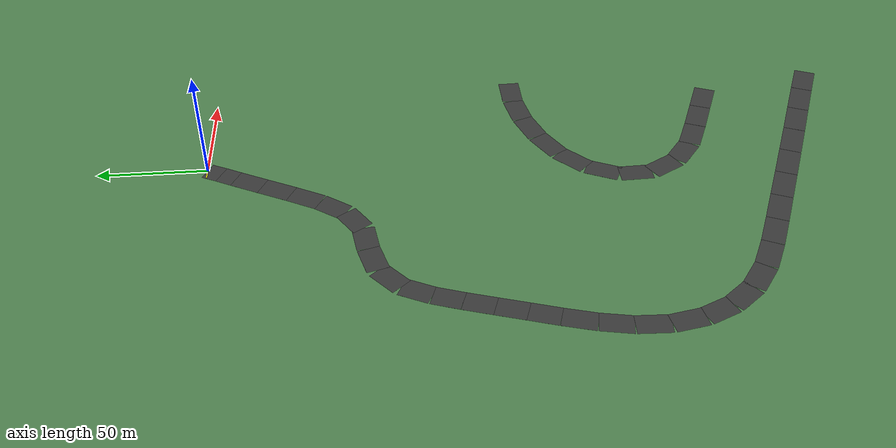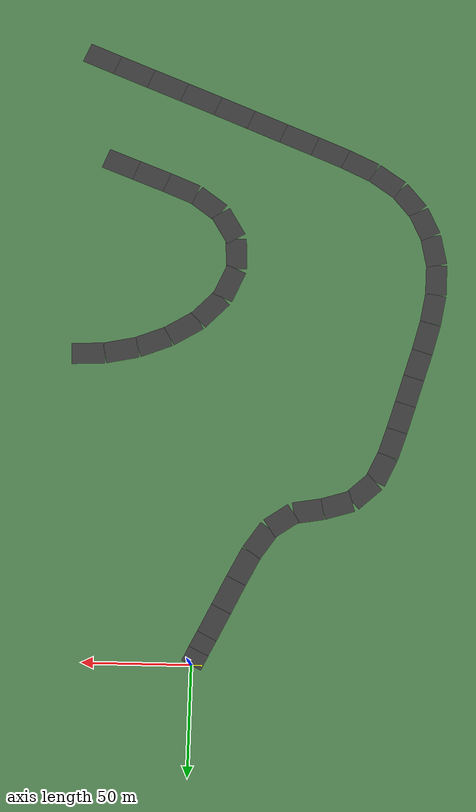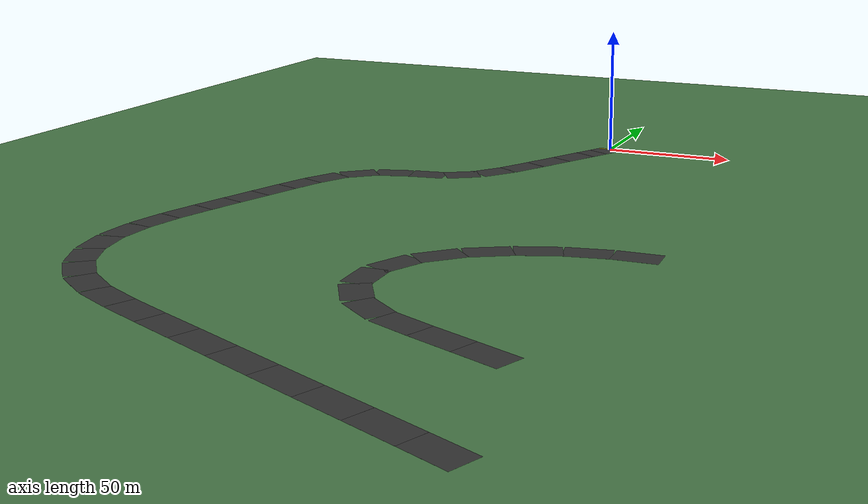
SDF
<sdf version="1.6">
 <world name="new_silesia_ring">
  <model name="ground_plane">
   <static>true</static>
   <link name="link">
    <collision name="collision">
     <geometry><plane><normal>0 0 1</normal><size>500 500</size></plane></geometry>
     <surface><friction><ode><mu>1</mu><mu2>1</mu2></ode></friction></surface>
    </collision>
    <visual name="visual">
     <geometry><plane><normal>0 0 1</normal><size>500 500</size></plane></geometry>
     <material>
      <ambient>0.3 0.5 0.3 1</ambient>
      <diffuse>0.3 0.5 0.3 1</diffuse>
      <specular>0.1 0.1 0.1 1</specular>
     </material>
    </visual>
   </link>
  </model>
  <model name="road_segment_57">
   <static>true</static>
   <pose>53.64045 -144.8764 0.003 0 0 0.04206929543263349</pose>
   <link name="link">
    <visual name="visual">
     <geometry><box><size>15.521833443572312 10.0 0.006</size></box></geometry>
     <material><ambient>0.22 0.22 0.22 1</ambient><diffuse>0.22 0.22 0.22 1</diffuse></material>
    </visual>
    <collision name="collision">
     <geometry><box><size>15.521833443572312 10.0 0.006</size></box></geometry>
     <surface><friction><ode><mu>0.9</mu><mu2>0.9</mu2></ode></friction></surface>
    </collision>
   </link>
  </model>
  <model name="road_segment_56">
   <static>true</static>
   <pose>38.1906 -146.78955 0.003 0 0 0.20333447781436031</pose>
   <link name="link">
    <visual name="visual">
     <geometry><box><size>15.715357228201972 10.0 0.006</size></box></geometry>
     <material><ambient>0.22 0.22 0.22 1</ambient><diffuse>0.22 0.22 0.22 1</diffuse></material>
    </visual>
    <collision name="collision">
     <geometry><box><size>15.715357228201972 10.0 0.006</size></box></geometry>
     <surface><friction><ode><mu>0.9</mu><mu2>0.9</mu2></ode></friction></surface>
    </collision>
   </link>
  </model>
  <model name="road_segment_55">
   <static>true</static>
   <pose>23.13925 -151.2493 0.003 0 0 0.372367575664516</pose>
   <link name="link">
    <visual name="visual">
     <geometry><box><size>15.79344735040454 10.0 0.006</size></box></geometry>
     <material><ambient>0.22 0.22 0.22 1</ambient><diffuse>0.22 0.22 0.22 1</diffuse></material>
    </visual>
    <collision name="collision">
     <geometry><box><size>15.79344735040454 10.0 0.006</size></box></geometry>
     <surface><friction><ode><mu>0.9</mu><mu2>0.9</mu2></ode></friction></surface>
    </collision>
   </link>
  </model>
  <model name="road_segment_54">
   <static>true</static>
   <pose>8.9681 -158.24865 0.003 0 0 0.5444005757566616</pose>
   <link name="link">
    <visual name="visual">
     <geometry><box><size>15.934762964349362 10.0 0.006</size></box></geometry>
     <material><ambient>0.22 0.22 0.22 1</ambient><diffuse>0.22 0.22 0.22 1</diffuse></material>
    </visual>
    <collision name="collision">
     <geometry><box><size>15.934762964349362 10.0 0.006</size></box></geometry>
     <surface><friction><ode><mu>0.9</mu><mu2>0.9</mu2></ode></friction></surface>
    </collision>
   </link>
  </model>
  <model name="road_segment_53">
   <static>true</static>
   <pose>-3.40845 -168.074 0.003 0 0 0.7976578167411227</pose>
   <link name="link">
    <visual name="visual">
     <geometry><box><size>15.9251707560704 10.0 0.006</size></box></geometry>
     <material><ambient>0.22 0.22 0.22 1</ambient><diffuse>0.22 0.22 0.22 1</diffuse></material>
    </visual>
    <collision name="collision">
     <geometry><box><size>15.9251707560704 10.0 0.006</size></box></geometry>
     <surface><friction><ode><mu>0.9</mu><mu2>0.9</mu2></ode></friction></surface>
    </collision>
   </link>
  </model>
  <model name="road_segment_52">
   <static>true</static>
   <pose>-12.1227 -180.954 0.003 0 0 1.1570293756925527</pose>
   <link name="link">
    <visual name="visual">
     <geometry><box><size>15.68567013423398 10.0 0.006</size></box></geometry>
     <material><ambient>0.22 0.22 0.22 1</ambient><diffuse>0.22 0.22 0.22 1</diffuse></material>
    </visual>
    <collision name="collision">
     <geometry><box><size>15.68567013423398 10.0 0.006</size></box></geometry>
     <surface><friction><ode><mu>0.9</mu><mu2>0.9</mu2></ode></friction></surface>
    </collision>
   </link>
  </model>
  <model name="road_segment_51">
   <static>true</static>
   <pose>-14.954049999999999 -195.6828 0.003 0 0 1.6134252991286218</pose>
   <link name="link">
    <visual name="visual">
     <geometry><box><size>15.109326476385391 10.0 0.006</size></box></geometry>
     <material><ambient>0.22 0.22 0.22 1</ambient><diffuse>0.22 0.22 0.22 1</diffuse></material>
    </visual>
    <collision name="collision">
     <geometry><box><size>15.109326476385391 10.0 0.006</size></box></geometry>
     <surface><friction><ode><mu>0.9</mu><mu2>0.9</mu2></ode></friction></surface>
    </collision>
   </link>
  </model>
  <model name="road_segment_50">
   <static>true</static>
   <pose>-10.760299999999999 -209.664 0.003 0 0 2.112558831666605</pose>
   <link name="link">
    <visual name="visual">
     <geometry><box><size>15.017252851304049 10.0 0.006</size></box></geometry>
     <material><ambient>0.22 0.22 0.22 1</ambient><diffuse>0.22 0.22 0.22 1</diffuse></material>
    </visual>
    <collision name="collision">
     <geometry><box><size>15.017252851304049 10.0 0.006</size></box></geometry>
     <surface><friction><ode><mu>0.9</mu><mu2>0.9</mu2></ode></friction></surface>
    </collision>
   </link>
  </model>
  <model name="road_segment_49">
   <static>true</static>
   <pose>-0.7967 -220.58695 0.003 0 0 2.50647493168757</pose>
   <link name="link">
    <visual name="visual">
     <geometry><box><size>15.134871845179275 10.0 0.006</size></box></geometry>
     <material><ambient>0.22 0.22 0.22 1</ambient><diffuse>0.22 0.22 0.22 1</diffuse></material>
    </visual>
    <collision name="collision">
     <geometry><box><size>15.134871845179275 10.0 0.006</size></box></geometry>
     <surface><friction><ode><mu>0.9</mu><mu2>0.9</mu2></ode></friction></surface>
    </collision>
   </link>
  </model>
  <model name="road_segment_48">
   <static>true</static>
   <pose>12.44575 -228.0388 0.003 0 0 2.7488453735276295</pose>
   <link name="link">
    <visual name="visual">
     <geometry><box><size>15.479924639674445 10.0 0.006</size></box></geometry>
     <material><ambient>0.22 0.22 0.22 1</ambient><diffuse>0.22 0.22 0.22 1</diffuse></material>
    </visual>
    <collision name="collision">
     <geometry><box><size>15.479924639674445 10.0 0.006</size></box></geometry>
     <surface><friction><ode><mu>0.9</mu><mu2>0.9</mu2></ode></friction></surface>
    </collision>
   </link>
  </model>
  <model name="road_segment_47">
   <static>true</static>
   <pose>27.09915 -233.90210000000002 0.003 0 0 2.7726404508303557</pose>
   <link name="link">
    <visual name="visual">
     <geometry><box><size>16.088139552166993 10.0 0.006</size></box></geometry>
     <material><ambient>0.22 0.22 0.22 1</ambient><diffuse>0.22 0.22 0.22 1</diffuse></material>
    </visual>
    <collision name="collision">
     <geometry><box><size>16.088139552166993 10.0 0.006</size></box></geometry>
     <surface><friction><ode><mu>0.9</mu><mu2>0.9</mu2></ode></friction></surface>
    </collision>
   </link>
  </model>
  <model name="road_segment_46">
   <static>true</static>
   <pose>42.117149999999995 -239.7222 0.003 0 0 2.771105646610524</pose>
   <link name="link">
    <visual name="visual">
     <geometry><box><size>16.12453129520359 10.0 0.006</size></box></geometry>
     <material><ambient>0.22 0.22 0.22 1</ambient><diffuse>0.22 0.22 0.22 1</diffuse></material>
    </visual>
    <collision name="collision">
     <geometry><box><size>16.12453129520359 10.0 0.006</size></box></geometry>
     <surface><friction><ode><mu>0.9</mu><mu2>0.9</mu2></ode></friction></surface>
    </collision>
   </link>
  </model>
  <model name="road_segment_30">
   <static>true</static>
   <pose>53.7392 -294.3836 0.003 0 0 -0.38939278661022164</pose>
   <link name="link">
    <visual name="visual">
     <geometry><box><size>16.46670147418725 10.0 0.006</size></box></geometry>
     <material><ambient>0.22 0.22 0.22 1</ambient><diffuse>0.22 0.22 0.22 1</diffuse></material>
    </visual>
    <collision name="collision">
     <geometry><box><size>16.46670147418725 10.0 0.006</size></box></geometry>
     <surface><friction><ode><mu>0.9</mu><mu2>0.9</mu2></ode></friction></surface>
    </collision>
   </link>
  </model>
  <model name="road_segment_29">
   <static>true</static>
   <pose>37.76385 -287.86675 0.003 0 0 -0.38543796242767414</pose>
   <link name="link">
    <visual name="visual">
     <geometry><box><size>18.040242934617027 10.0 0.006</size></box></geometry>
     <material><ambient>0.22 0.22 0.22 1</ambient><diffuse>0.22 0.22 0.22 1</diffuse></material>
    </visual>
    <collision name="collision">
     <geometry><box><size>18.040242934617027 10.0 0.006</size></box></geometry>
     <surface><friction><ode><mu>0.9</mu><mu2>0.9</mu2></ode></friction></surface>
    </collision>
   </link>
  </model>
  <model name="road_segment_28">
   <static>true</static>
   <pose>21.0987 -281.1259 0.003 0 0 -0.38329283233735023</pose>
   <link name="link">
    <visual name="visual">
     <geometry><box><size>17.91343031359433 10.0 0.006</size></box></geometry>
     <material><ambient>0.22 0.22 0.22 1</ambient><diffuse>0.22 0.22 0.22 1</diffuse></material>
    </visual>
    <collision name="collision">
     <geometry><box><size>17.91343031359433 10.0 0.006</size></box></geometry>
     <surface><friction><ode><mu>0.9</mu><mu2>0.9</mu2></ode></friction></surface>
    </collision>
   </link>
  </model>
  <model name="road_segment_27">
   <static>true</static>
   <pose>4.47865 -274.3926 0.003 0 0 -0.3865476433446207</pose>
   <link name="link">
    <visual name="visual">
     <geometry><box><size>17.95099454097182 10.0 0.006</size></box></geometry>
     <material><ambient>0.22 0.22 0.22 1</ambient><diffuse>0.22 0.22 0.22 1</diffuse></material>
    </visual>
    <collision name="collision">
     <geometry><box><size>17.95099454097182 10.0 0.006</size></box></geometry>
     <surface><friction><ode><mu>0.9</mu><mu2>0.9</mu2></ode></friction></surface>
    </collision>
   </link>
  </model>
  <model name="road_segment_26">
   <static>true</static>
   <pose>-12.008949999999999 -267.65205000000003 0.003 0 0 -0.3896591294244005</pose>
   <link name="link">
    <visual name="visual">
     <geometry><box><size>17.673532736269777 10.0 0.006</size></box></geometry>
     <material><ambient>0.22 0.22 0.22 1</ambient><diffuse>0.22 0.22 0.22 1</diffuse></material>
    </visual>
    <collision name="collision">
     <geometry><box><size>17.673532736269777 10.0 0.006</size></box></geometry>
     <surface><friction><ode><mu>0.9</mu><mu2>0.9</mu2></ode></friction></surface>
    </collision>
   </link>
  </model>
  <model name="road_segment_25">
   <static>true</static>
   <pose>-28.176650000000002 -260.9993 0.003 0 0 -0.3910905039396862</pose>
   <link name="link">
    <visual name="visual">
     <geometry><box><size>17.292379944067864 10.0 0.006</size></box></geometry>
     <material><ambient>0.22 0.22 0.22 1</ambient><diffuse>0.22 0.22 0.22 1</diffuse></material>
    </visual>
    <collision name="collision">
     <geometry><box><size>17.292379944067864 10.0 0.006</size></box></geometry>
     <surface><friction><ode><mu>0.9</mu><mu2>0.9</mu2></ode></friction></surface>
    </collision>
   </link>
  </model>
  <model name="road_segment_24">
   <static>true</static>
   <pose>-43.90845 -254.54145 0.003 0 0 -0.38790025540724116</pose>
   <link name="link">
    <visual name="visual">
     <geometry><box><size>16.71903540339573 10.0 0.006</size></box></geometry>
     <material><ambient>0.22 0.22 0.22 1</ambient><diffuse>0.22 0.22 0.22 1</diffuse></material>
    </visual>
    <collision name="collision">
     <geometry><box><size>16.71903540339573 10.0 0.006</size></box></geometry>
     <surface><friction><ode><mu>0.9</mu><mu2>0.9</mu2></ode></friction></surface>
    </collision>
   </link>
  </model>
  <model name="road_segment_23">
   <static>true</static>
   <pose>-59.112 -248.2502 0.003 0 0 -0.3969397901738688</pose>
   <link name="link">
    <visual name="visual">
     <geometry><box><size>16.188914293429317 10.0 0.006</size></box></geometry>
     <material><ambient>0.22 0.22 0.22 1</ambient><diffuse>0.22 0.22 0.22 1</diffuse></material>
    </visual>
    <collision name="collision">
     <geometry><box><size>16.188914293429317 10.0 0.006</size></box></geometry>
     <surface><friction><ode><mu>0.9</mu><mu2>0.9</mu2></ode></friction></surface>
    </collision>
   </link>
  </model>
  <model name="road_segment_22">
   <static>true</static>
   <pose>-73.62765 -241.77465 0.003 0 0 -0.4431287480037993</pose>
   <link name="link">
    <visual name="visual">
     <geometry><box><size>15.608669945257988 10.0 0.006</size></box></geometry>
     <material><ambient>0.22 0.22 0.22 1</ambient><diffuse>0.22 0.22 0.22 1</diffuse></material>
    </visual>
    <collision name="collision">
     <geometry><box><size>15.608669945257988 10.0 0.006</size></box></geometry>
     <surface><friction><ode><mu>0.9</mu><mu2>0.9</mu2></ode></friction></surface>
    </collision>
   </link>
  </model>
  <model name="road_segment_21">
   <static>true</static>
   <pose>-86.8143 -234.1602 0.003 0 0 -0.6077590205837772</pose>
   <link name="link">
    <visual name="visual">
     <geometry><box><size>14.94914772821515 10.0 0.006</size></box></geometry>
     <material><ambient>0.22 0.22 0.22 1</ambient><diffuse>0.22 0.22 0.22 1</diffuse></material>
    </visual>
    <collision name="collision">
     <geometry><box><size>14.94914772821515 10.0 0.006</size></box></geometry>
     <surface><friction><ode><mu>0.9</mu><mu2>0.9</mu2></ode></friction></surface>
    </collision>
   </link>
  </model>
  <model name="road_segment_20">
   <static>true</static>
   <pose>-97.525 -224.4759 0.003 0 0 -0.8694281558311076</pose>
   <link name="link">
    <visual name="visual">
     <geometry><box><size>14.179013275965287 10.0 0.006</size></box></geometry>
     <material><ambient>0.22 0.22 0.22 1</ambient><diffuse>0.22 0.22 0.22 1</diffuse></material>
    </visual>
    <collision name="collision">
     <geometry><box><size>14.179013275965287 10.0 0.006</size></box></geometry>
     <surface><friction><ode><mu>0.9</mu><mu2>0.9</mu2></ode></friction></surface>
    </collision>
   </link>
  </model>
  <model name="road_segment_19">
   <static>true</static>
   <pose>-105.0272 -212.85035 0.003 0 0 -1.1302280583587125</pose>
   <link name="link">
    <visual name="visual">
     <geometry><box><size>13.729983403121809 10.0 0.006</size></box></geometry>
     <material><ambient>0.22 0.22 0.22 1</ambient><diffuse>0.22 0.22 0.22 1</diffuse></material>
    </visual>
    <collision name="collision">
     <geometry><box><size>13.729983403121809 10.0 0.006</size></box></geometry>
     <surface><friction><ode><mu>0.9</mu><mu2>0.9</mu2></ode></friction></surface>
    </collision>
   </link>
  </model>
  <model name="road_segment_18">
   <static>true</static>
   <pose>-109.4142 -199.53019999999998 0.003 0 0 -1.3683674291972154</pose>
   <link name="link">
    <visual name="visual">
     <geometry><box><size>14.517837697122792 10.0 0.006</size></box></geometry>
     <material><ambient>0.22 0.22 0.22 1</ambient><diffuse>0.22 0.22 0.22 1</diffuse></material>
    </visual>
    <collision name="collision">
     <geometry><box><size>14.517837697122792 10.0 0.006</size></box></geometry>
     <surface><friction><ode><mu>0.9</mu><mu2>0.9</mu2></ode></friction></surface>
    </collision>
   </link>
  </model>
  <model name="road_segment_17">
   <static>true</static>
   <pose>-110.68405 -185.07165 0.003 0 0 -1.5965872684049844</pose>
   <link name="link">
    <visual name="visual">
     <geometry><box><size>14.700588943984512 10.0 0.006</size></box></geometry>
     <material><ambient>0.22 0.22 0.22 1</ambient><diffuse>0.22 0.22 0.22 1</diffuse></material>
    </visual>
    <collision name="collision">
     <geometry><box><size>14.700588943984512 10.0 0.006</size></box></geometry>
     <surface><friction><ode><mu>0.9</mu><mu2>0.9</mu2></ode></friction></surface>
    </collision>
   </link>
  </model>
  <model name="road_segment_16">
   <static>true</static>
   <pose>-109.2219 -170.66415 0.003 0 0 -1.7491448655253086</pose>
   <link name="link">
    <visual name="visual">
     <geometry><box><size>14.346869886145909 10.0 0.006</size></box></geometry>
     <material><ambient>0.22 0.22 0.22 1</ambient><diffuse>0.22 0.22 0.22 1</diffuse></material>
    </visual>
    <collision name="collision">
     <geometry><box><size>14.346869886145909 10.0 0.006</size></box></geometry>
     <surface><friction><ode><mu>0.9</mu><mu2>0.9</mu2></ode></friction></surface>
    </collision>
   </link>
  </model>
  <model name="road_segment_15">
   <static>true</static>
   <pose>-106.02945 -156.54435 0.003 0 0 -1.8363039609945977</pose>
   <link name="link">
    <visual name="visual">
     <geometry><box><size>14.633050542521897 10.0 0.006</size></box></geometry>
     <material><ambient>0.22 0.22 0.22 1</ambient><diffuse>0.22 0.22 0.22 1</diffuse></material>
    </visual>
    <collision name="collision">
     <geometry><box><size>14.633050542521897 10.0 0.006</size></box></geometry>
     <surface><friction><ode><mu>0.9</mu><mu2>0.9</mu2></ode></friction></surface>
    </collision>
   </link>
  </model>
  <model name="road_segment_14">
   <static>true</static>
   <pose>-102.16714999999999 -143.12905 0.003 0 0 -1.8674282833660967</pose>
   <link name="link">
    <visual name="visual">
     <geometry><box><size>13.290755211800409 10.0 0.006</size></box></geometry>
     <material><ambient>0.22 0.22 0.22 1</ambient><diffuse>0.22 0.22 0.22 1</diffuse></material>
    </visual>
    <collision name="collision">
     <geometry><box><size>13.290755211800409 10.0 0.006</size></box></geometry>
     <surface><friction><ode><mu>0.9</mu><mu2>0.9</mu2></ode></friction></surface>
    </collision>
   </link>
  </model>
  <model name="road_segment_13">
   <static>true</static>
   <pose>-98.3039 -130.38765 0.003 0 0 -1.8629604830325042</pose>
   <link name="link">
    <visual name="visual">
     <geometry><box><size>13.337715202012669 10.0 0.006</size></box></geometry>
     <material><ambient>0.22 0.22 0.22 1</ambient><diffuse>0.22 0.22 0.22 1</diffuse></material>
    </visual>
    <collision name="collision">
     <geometry><box><size>13.337715202012669 10.0 0.006</size></box></geometry>
     <surface><friction><ode><mu>0.9</mu><mu2>0.9</mu2></ode></friction></surface>
    </collision>
   </link>
  </model>
  <model name="road_segment_12">
   <static>true</static>
   <pose>-94.4365 -117.6358 0.003 0 0 -1.867565622556633</pose>
   <link name="link">
    <visual name="visual">
     <geometry><box><size>13.313168656634678 10.0 0.006</size></box></geometry>
     <material><ambient>0.22 0.22 0.22 1</ambient><diffuse>0.22 0.22 0.22 1</diffuse></material>
    </visual>
    <collision name="collision">
     <geometry><box><size>13.313168656634678 10.0 0.006</size></box></geometry>
     <surface><friction><ode><mu>0.9</mu><mu2>0.9</mu2></ode></friction></surface>
    </collision>
   </link>
  </model>
  <model name="road_segment_11">
   <static>true</static>
   <pose>-90.44805 -105.16345000000001 0.003 0 0 -1.8934701648733778</pose>
   <link name="link">
    <visual name="visual">
     <geometry><box><size>12.8781282778205 10.0 0.006</size></box></geometry>
     <material><ambient>0.22 0.22 0.22 1</ambient><diffuse>0.22 0.22 0.22 1</diffuse></material>
    </visual>
    <collision name="collision">
     <geometry><box><size>12.8781282778205 10.0 0.006</size></box></geometry>
     <surface><friction><ode><mu>0.9</mu><mu2>0.9</mu2></ode></friction></surface>
    </collision>
   </link>
  </model>
  <model name="road_segment_10">
   <static>true</static>
   <pose>-85.44585000000001 -92.8672 0.003 0 0 -2.0169221704576397</pose>
   <link name="link">
    <visual name="visual">
     <geometry><box><size>13.72203809534138 10.0 0.006</size></box></geometry>
     <material><ambient>0.22 0.22 0.22 1</ambient><diffuse>0.22 0.22 0.22 1</diffuse></material>
    </visual>
    <collision name="collision">
     <geometry><box><size>13.72203809534138 10.0 0.006</size></box></geometry>
     <surface><friction><ode><mu>0.9</mu><mu2>0.9</mu2></ode></friction></surface>
    </collision>
   </link>
  </model>
  <model name="road_segment_9">
   <static>true</static>
   <pose>-77.18955 -81.9517 0.003 0 0 -2.4130034687269326</pose>
   <link name="link">
    <visual name="visual">
     <geometry><box><size>14.196078670182123 10.0 0.006</size></box></geometry>
     <material><ambient>0.22 0.22 0.22 1</ambient><diffuse>0.22 0.22 0.22 1</diffuse></material>
    </visual>
    <collision name="collision">
     <geometry><box><size>14.196078670182123 10.0 0.006</size></box></geometry>
     <surface><friction><ode><mu>0.9</mu><mu2>0.9</mu2></ode></friction></surface>
    </collision>
   </link>
  </model>
  <model name="road_segment_8">
   <static>true</static>
   <pose>-65.1341 -75.2167 0.003 0 0 -2.8526962294916514</pose>
   <link name="link">
    <visual name="visual">
     <geometry><box><size>14.103463581688017 10.0 0.006</size></box></geometry>
     <material><ambient>0.22 0.22 0.22 1</ambient><diffuse>0.22 0.22 0.22 1</diffuse></material>
    </visual>
    <collision name="collision">
     <geometry><box><size>14.103463581688017 10.0 0.006</size></box></geometry>
     <surface><friction><ode><mu>0.9</mu><mu2>0.9</mu2></ode></friction></surface>
    </collision>
   </link>
  </model>
  <model name="road_segment_7">
   <static>true</static>
   <pose>-51.69375 -72.0952 0.003 0 0 -2.9765859747372345</pose>
   <link name="link">
    <visual name="visual">
     <geometry><box><size>13.545687575387232 10.0 0.006</size></box></geometry>
     <material><ambient>0.22 0.22 0.22 1</ambient><diffuse>0.22 0.22 0.22 1</diffuse></material>
    </visual>
    <collision name="collision">
     <geometry><box><size>13.545687575387232 10.0 0.006</size></box></geometry>
     <surface><friction><ode><mu>0.9</mu><mu2>0.9</mu2></ode></friction></surface>
    </collision>
   </link>
  </model>
  <model name="road_segment_6">
   <static>true</static>
   <pose>-39.5005 -67.25059999999999 0.003 0 0 -2.5464447551289204</pose>
   <link name="link">
    <visual name="visual">
     <geometry><box><size>13.313921160950287 10.0 0.006</size></box></geometry>
     <material><ambient>0.22 0.22 0.22 1</ambient><diffuse>0.22 0.22 0.22 1</diffuse></material>
    </visual>
    <collision name="collision">
     <geometry><box><size>13.313921160950287 10.0 0.006</size></box></geometry>
     <surface><friction><ode><mu>0.9</mu><mu2>0.9</mu2></ode></friction></surface>
    </collision>
   </link>
  </model>
  <model name="road_segment_5">
   <static>true</static>
   <pose>-30.007150000000003 -57.81165 0.003 0 0 -2.179892225453084</pose>
   <link name="link">
    <visual name="visual">
     <geometry><box><size>13.916335699457676 10.0 0.006</size></box></geometry>
     <material><ambient>0.22 0.22 0.22 1</ambient><diffuse>0.22 0.22 0.22 1</diffuse></material>
    </visual>
    <collision name="collision">
     <geometry><box><size>13.916335699457676 10.0 0.006</size></box></geometry>
     <surface><friction><ode><mu>0.9</mu><mu2>0.9</mu2></ode></friction></surface>
    </collision>
   </link>
  </model>
  <model name="road_segment_4">
   <static>true</static>
   <pose>-22.6453 -45.579899999999995 0.003 0 0 -2.0488610687393356</pose>
   <link name="link">
    <visual name="visual">
     <geometry><box><size>14.697592295338715 10.0 0.006</size></box></geometry>
     <material><ambient>0.22 0.22 0.22 1</ambient><diffuse>0.22 0.22 0.22 1</diffuse></material>
    </visual>
    <collision name="collision">
     <geometry><box><size>14.697592295338715 10.0 0.006</size></box></geometry>
     <surface><friction><ode><mu>0.9</mu><mu2>0.9</mu2></ode></friction></surface>
    </collision>
   </link>
  </model>
  <model name="road_segment_3">
   <static>true</static>
   <pose>-16.04065 -32.47535 0.003 0 0 -2.0263778471238205</pose>
   <link name="link">
    <visual name="visual">
     <geometry><box><size>14.653922094101631 10.0 0.006</size></box></geometry>
     <material><ambient>0.22 0.22 0.22 1</ambient><diffuse>0.22 0.22 0.22 1</diffuse></material>
    </visual>
    <collision name="collision">
     <geometry><box><size>14.653922094101631 10.0 0.006</size></box></geometry>
     <surface><friction><ode><mu>0.9</mu><mu2>0.9</mu2></ode></friction></surface>
    </collision>
   </link>
  </model>
  <model name="road_segment_2">
   <static>true</static>
   <pose>-9.7384 -19.6903 0.003 0 0 -2.0313192082434384</pose>
   <link name="link">
    <visual name="visual">
     <geometry><box><size>13.854118724769181 10.0 0.006</size></box></geometry>
     <material><ambient>0.22 0.22 0.22 1</ambient><diffuse>0.22 0.22 0.22 1</diffuse></material>
    </visual>
    <collision name="collision">
     <geometry><box><size>13.854118724769181 10.0 0.006</size></box></geometry>
     <surface><friction><ode><mu>0.9</mu><mu2>0.9</mu2></ode></friction></surface>
    </collision>
   </link>
  </model>
  <model name="road_segment_1">
   <static>true</static>
   <pose>-4.888 -10.02335 0.003 0 0 -2.0439031131218353</pose>
   <link name="link">
    <visual name="visual">
     <geometry><box><size>7.777392368268428 10.0 0.006</size></box></geometry>
     <material><ambient>0.22 0.22 0.22 1</ambient><diffuse>0.22 0.22 0.22 1</diffuse></material>
    </visual>
    <collision name="collision">
     <geometry><box><size>7.777392368268428 10.0 0.006</size></box></geometry>
     <surface><friction><ode><mu>0.9</mu><mu2>0.9</mu2></ode></friction></surface>
    </collision>
   </link>
  </model>
  <model name="road_segment_0">
   <static>true</static>
   <pose>-1.55805 -3.2809 0.003 0 0 -2.014150780483147</pose>
   <link name="link">
    <visual name="visual">
     <geometry><box><size>7.264110299961035 10.0 0.006</size></box></geometry>
     <material><ambient>0.22 0.22 0.22 1</ambient><diffuse>0.22 0.22 0.22 1</diffuse></material>
    </visual>
    <collision name="collision">
     <geometry><box><size>7.264110299961035 10.0 0.006</size></box></geometry>
     <surface><friction><ode><mu>0.9</mu><mu2>0.9</mu2></ode></friction></surface>
    </collision>
   </link>
  </model>
  <model name="start_line">
   <static>true</static>
   <pose>0 0 0.05 0 0 0</pose>
   <link name="link">
    <visual name="visual">
     <geometry><box><size>10 0.5 0.1</size></box></geometry>
     <material><ambient>1 1 0 1</ambient><diffuse>1 1 0 1</diffuse></material>
    </visual>
    <collision name="collision"><geometry><box><size>10 0.5 0.1</size></box></geometry></collision>
   </link>
  </model>
  <model name="origin">
   <static>true</static>
   <pose>0 0 0.1 0 0 0</pose>
   <link name="link">
    <visual name="visual">
     <geometry><sphere><radius>0.5</radius></sphere></geometry>
     <material><ambient>0 0 1 1</ambient><diffuse>0 0 1 1</diffuse></material>
    </visual>
   </link>
  </model>
 </world>
</sdf>
